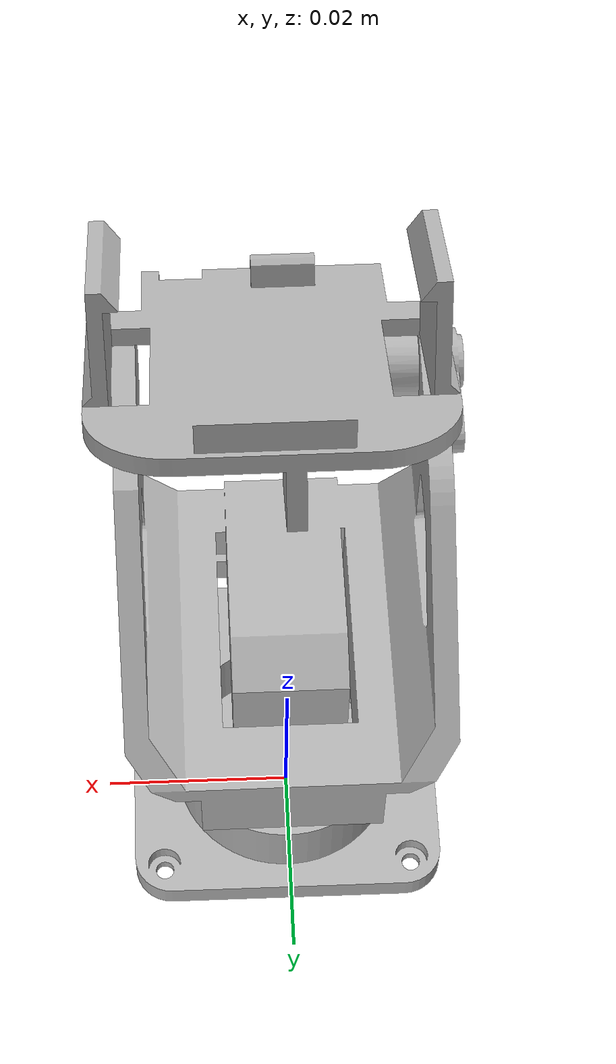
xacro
<?xml version="1.0" ?>
<robot name="robot_arm_dof_2" xmlns:xacro="http://www.ros.org/wiki/xacro">

<xacro:include filename="$(find robot_arm_dof_2_description)/urdf/materials.xacro" />
<xacro:include filename="$(find robot_arm_dof_2_description)/urdf/robot_arm_dof_2.trans" />
<xacro:include filename="$(find robot_arm_dof_2_description)/urdf/robot_arm_dof_2.gazebo" />
<link name="base_link">
  <inertial>
    <origin xyz="0.0002675550617031898 -0.003859600493532791 0.0027968455087236804" rpy="0 0 0"/>
    <mass value="0.024846444011798943"/>
    <inertia ixx="3e-06" iyy="2e-06" izz="5e-06" ixy="-0.0" iyz="-0.0" ixz="0.0"/>
  </inertial>
  <visual>
    <origin xyz="0 0 0" rpy="0 0 0"/>
    <geometry>
      <mesh filename="package://robot_arm_dof_2_description/meshes/base_link.stl" scale="0.001 0.001 0.001"/>
    </geometry>
    <material name="silver"/>
  </visual>
  <collision>
    <origin xyz="0 0 0" rpy="0 0 0"/>
    <geometry>
      <mesh filename="package://robot_arm_dof_2_description/meshes/base_link.stl" scale="0.001 0.001 0.001"/>
    </geometry>
  </collision>
</link>

<link name="servo_emax_9g_horn_Domyslna_1">
  <inertial>
    <origin xyz="-0.0004234472810619169 -0.006526621256796115 0.0223084622751146" rpy="0 0 0"/>
    <mass value="0.10507245989070763"/>
    <inertia ixx="1.9e-05" iyy="1.5e-05" izz="1.9e-05" ixy="-0.0" iyz="4e-06" ixz="0.0"/>
  </inertial>
  <visual>
    <origin xyz="-0.000268 0.000227 -0.002988" rpy="0 0 0"/>
    <geometry>
      <mesh filename="package://robot_arm_dof_2_description/meshes/servo_emax_9g_horn_Domyslna_1.stl" scale="0.001 0.001 0.001"/>
    </geometry>
    <material name="silver"/>
  </visual>
  <collision>
    <origin xyz="-0.000268 0.000227 -0.002988" rpy="0 0 0"/>
    <geometry>
      <mesh filename="package://robot_arm_dof_2_description/meshes/servo_emax_9g_horn_Domyslna_1.stl" scale="0.001 0.001 0.001"/>
    </geometry>
  </collision>
</link>

<link name="pantilt_3_Domyslna_1">
  <inertial>
    <origin xyz="-0.017033400288302317 0.007006349607804319 0.011565901260909561" rpy="0 0 0"/>
    <mass value="0.025707768034284914"/>
    <inertia ixx="3e-06" iyy="4e-06" izz="5e-06" ixy="0.0" iyz="-1e-06" ixz="0.0"/>
  </inertial>
  <visual>
    <origin xyz="-0.019343 0.026998 -0.0426" rpy="0 0 0"/>
    <geometry>
      <mesh filename="package://robot_arm_dof_2_description/meshes/pantilt_3_Domyslna_1.stl" scale="0.001 0.001 0.001"/>
    </geometry>
    <material name="silver"/>
  </visual>
  <collision>
    <origin xyz="-0.019343 0.026998 -0.0426" rpy="0 0 0"/>
    <geometry>
      <mesh filename="package://robot_arm_dof_2_description/meshes/pantilt_3_Domyslna_1.stl" scale="0.001 0.001 0.001"/>
    </geometry>
  </collision>
</link>

<joint name="joint1" type="revolute">
  <origin xyz="0.000268 -0.000227 0.002988" rpy="0 0 0"/>
  <parent link="base_link"/>
  <child link="servo_emax_9g_horn_Domyslna_1"/>
  <axis xyz="-0.0 0.0 1.0"/>
  <limit upper="1.570796" lower="-1.570796" effort="100" velocity="100"/>
</joint>

<joint name="joint2" type="continuous">
  <origin xyz="0.019075 -0.026771 0.039612" rpy="0 0 0"/>
  <parent link="servo_emax_9g_horn_Domyslna_1"/>
  <child link="pantilt_3_Domyslna_1"/>
  <axis xyz="0.999986 0.005275 0.0"/>
</joint>

</robot>

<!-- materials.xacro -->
<robot name="robot_arm_dof_2" xmlns:xacro="http://www.ros.org/wiki/xacro" >

<material name="silver">
  <color rgba="0.700 0.700 0.700 1.000"/>
</material>

</robot>

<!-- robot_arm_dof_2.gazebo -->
<robot name="robot_arm_dof_2" xmlns:xacro="http://www.ros.org/wiki/xacro" >

<xacro:property name="body_color" value="Gazebo/Silver" />

<gazebo>
  <plugin name="control" filename="libgazebo_ros_control.so"/>
</gazebo>
<gazebo reference="base_link">
  <material>${body_color}</material>
  <mu1>0.2</mu1>
  <mu2>0.2</mu2>
  <selfCollide>true</selfCollide>
  <gravity>true</gravity>
</gazebo>

<gazebo reference="servo_emax_9g_horn_Domyslna_1">
  <material>${body_color}</material>
  <mu1>0.2</mu1>
  <mu2>0.2</mu2>
  <selfCollide>true</selfCollide>
</gazebo>

<gazebo reference="pantilt_3_Domyslna_1">
  <material>${body_color}</material>
  <mu1>0.2</mu1>
  <mu2>0.2</mu2>
  <selfCollide>true</selfCollide>
</gazebo>

</robot>
